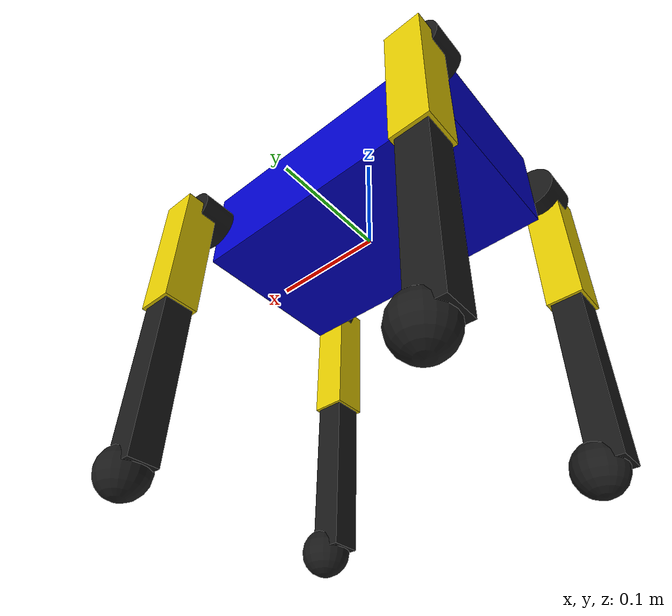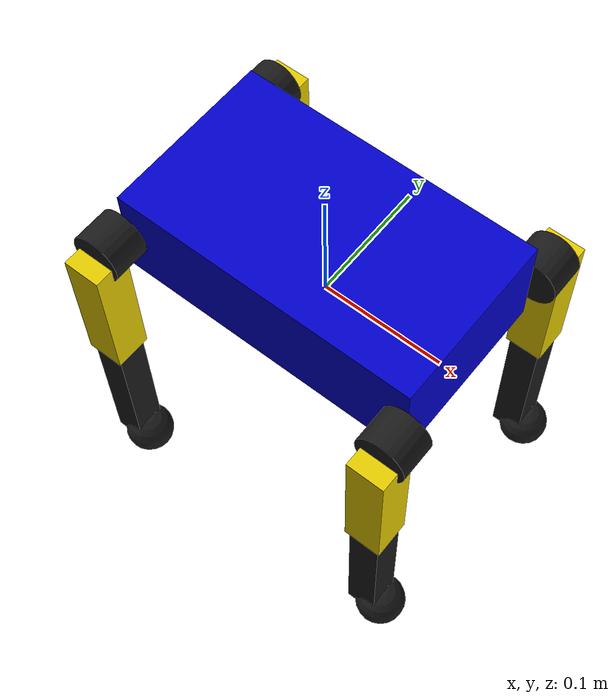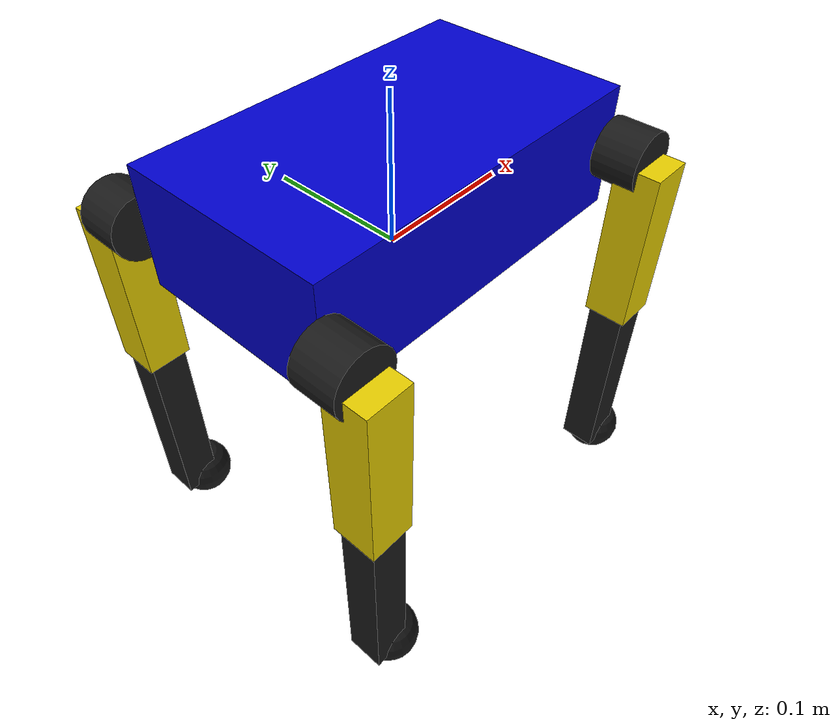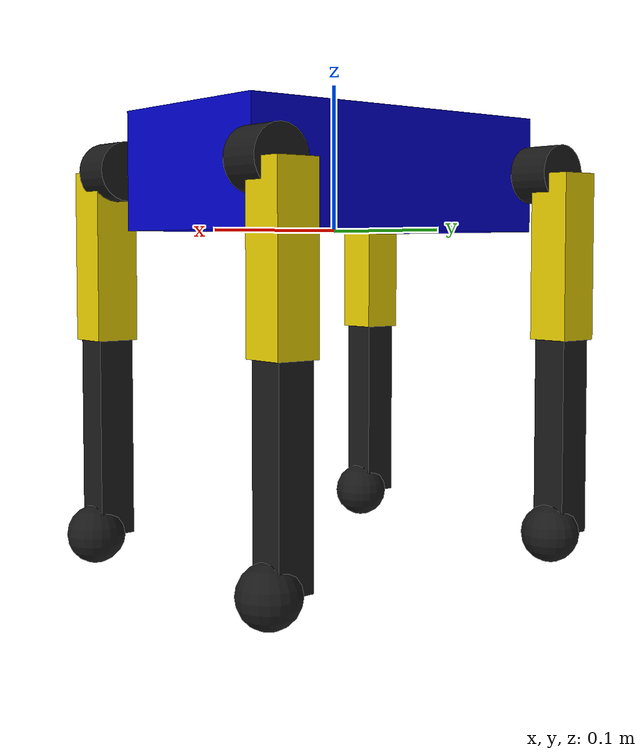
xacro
<?xml version="1.0"?>
<robot xmlns:xacro="http://www.ros.org/wiki/xacro" name="quadruped">
  <material name="blue"><color rgba="0 0 0.8 1"/></material>
  <material name="black"><color rgba="0.1 0.1 0.1 1"/></material>
  <material name="yellow"><color rgba="0.9 0.8 0.0 1"/></material>
  <xacro:property name="PI" value="3.1415926535"/>
  <!-- 실제 로봇 치수: L1=0.03m, L2=0.115m, L3=0.135m, 몸통길이=0.245m -->
  <xacro:property name="L1" value="0.03"/>    <!-- 어깨→허벅지 축 오프셋 -->
  <xacro:property name="L2" value="0.115"/>   <!-- 허벅지 길이 -->
  <xacro:property name="L3" value="0.135"/>   <!-- 종아리 길이 -->
  <xacro:property name="BODY_L" value="0.245"/>
  <xacro:property name="BODY_W" value="0.14"/>
  <xacro:property name="BODY_H" value="0.08"/>
  <xacro:property name="HIP_X"  value="0.1225"/>  <!-- BODY_L/2 -->
  <xacro:property name="HIP_Y"  value="0.07"/>    <!-- BODY_W/2 -->
  <xacro:property name="HIP_Z"  value="${BODY_H/2}"/>
  <link name="base_footprint"/>
  <joint name="base_joint" type="fixed"><parent link="base_footprint"/><child link="base_link"/><origin xyz="0 0 0"/></joint>
  <link name="base_link">
  <visual><origin xyz="0 0 ${BODY_H/2}"/><geometry><box size="${BODY_L} ${BODY_W} ${BODY_H}"/></geometry><material name="blue"/></visual>
  <collision><origin xyz="0 0 ${BODY_H/2}"/><geometry><box size="${BODY_L} ${BODY_W} ${BODY_H}"/></geometry></collision>
  <inertial>
    <origin xyz="0 0 ${BODY_H/2}"/>
    <mass value="2.5"/>
    <inertia ixx="0.0082" iyy="0.0155" izz="0.0212" ixy="0" ixz="0" iyz="0"/>
  </inertial>
</link>
  <xacro:macro name="simple_leg" params="pos x y reflect">
    <joint name="${pos}_shoulder_joint" type="revolute"><parent link="base_link"/><child link="${pos}_shoulder_link"/><axis xyz="1 0 0"/><origin xyz="${x} ${y} ${HIP_Z}"/><limit effort="300.0" lower="-1.57" upper="1.57" velocity="3.0"/><dynamics damping="0.05" friction="0.02"/></joint>
    <link name="${pos}_shoulder_link"><visual><origin rpy="${PI/2} 0 0" xyz="0 ${reflect*L1/2} 0"/><geometry><cylinder radius="0.02" length="${L1}"/></geometry><material name="black"/></visual><inertial><mass value="0.15"/><inertia ixx="0.0001" iyy="0.0001" izz="0.0001" ixy="0" ixz="0" iyz="0"/></inertial></link>
    <joint name="${pos}_leg_joint" type="revolute"><parent link="${pos}_shoulder_link"/><child link="${pos}_leg_link"/><axis xyz="0 1 0"/><origin xyz="0 ${reflect*L1} 0"/><limit effort="300.0" lower="-2.6" upper="2.6" velocity="3.0"/><dynamics damping="0.05" friction="0.02"/></joint>
    <link name="${pos}_leg_link"><visual><origin xyz="0 0 ${-L2/2}"/><geometry><box size="0.03 0.03 ${L2}"/></geometry><material name="yellow"/></visual><collision><origin xyz="0 0 ${-L2/2}"/><geometry><box size="0.03 0.03 ${L2}"/></geometry></collision><inertial><origin xyz="0 0 ${-L2/2}"/><mass value="0.25"/><inertia ixx="0.00030" iyy="0.00030" izz="0.00006" ixy="0" ixz="0" iyz="0"/></inertial></link>
    <joint name="${pos}_foot_joint" type="revolute"><parent link="${pos}_leg_link"/><child link="${pos}_foot_link"/><axis xyz="0 1 0"/><origin xyz="0 0 ${-L2}"/><limit effort="300.0" lower="-2.6" upper="2.6" velocity="3.0"/><dynamics damping="0.05" friction="0.02"/></joint>
    <link name="${pos}_foot_link"><visual><origin xyz="0 0 ${-L3/2}"/><geometry><box size="0.025 0.025 ${L3}"/></geometry><material name="black"/></visual><collision><origin xyz="0 0 ${-L3/2}"/><geometry><box size="0.025 0.025 ${L3}"/></geometry></collision><inertial><origin xyz="0 0 ${-L3/2}"/><mass value="0.15"/><inertia ixx="0.00023" iyy="0.00023" izz="0.00004" ixy="0" ixz="0" iyz="0"/></inertial></link>
    <link name="${pos}_toe_link"><visual><geometry><sphere radius="0.02"/></geometry><material name="black"/></visual><collision><geometry><sphere radius="0.02"/></geometry></collision><inertial><mass value="0.05"/><inertia ixx="0.000008" iyy="0.000008" izz="0.000008" ixy="0" ixz="0" iyz="0"/></inertial></link>
    <joint name="${pos}_toe_joint" type="fixed"><parent link="${pos}_foot_link"/><child link="${pos}_toe_link"/><origin xyz="0.01 0 ${-L3}"/></joint>
    <gazebo reference="${pos}_toe_link"><kp>1000000</kp>
<kd>100</kd>
<maxVel>1.0</maxVel>
<minDepth>0.002</minDepth>
<mu1>2.0</mu1>
<mu2>2.0</mu2></gazebo>
  </xacro:macro>
  <xacro:simple_leg pos="front_left"  x="${HIP_X}"  y="${HIP_Y}"  reflect="1"/>
  <xacro:simple_leg pos="front_right" x="${HIP_X}"  y="${-HIP_Y}" reflect="-1"/>
  <xacro:simple_leg pos="rear_left"   x="${-HIP_X}" y="${HIP_Y}"  reflect="1"/>
  <xacro:simple_leg pos="rear_right"  x="${-HIP_X}" y="${-HIP_Y}" reflect="-1"/>
  <ros2_control name="GazeboSystem" type="system"><hardware><plugin>gazebo_ros2_control/GazeboSystem</plugin></hardware>
    <xacro:macro name="ji" params="name">
    <joint name="${name}">
      <command_interface name="effort"/>
      <state_interface name="position"/>
      <state_interface name="velocity"/>
    </joint>
  </xacro:macro>
    <xacro:ji name="front_left_shoulder_joint"/><xacro:ji name="front_left_leg_joint"/><xacro:ji name="front_left_foot_joint"/>
    <xacro:ji name="front_right_shoulder_joint"/><xacro:ji name="front_right_leg_joint"/><xacro:ji name="front_right_foot_joint"/>
    <xacro:ji name="rear_left_shoulder_joint"/><xacro:ji name="rear_left_leg_joint"/><xacro:ji name="rear_left_foot_joint"/>
    <xacro:ji name="rear_right_shoulder_joint"/><xacro:ji name="rear_right_leg_joint"/><xacro:ji name="rear_right_foot_joint"/>
  </ros2_control>
  <gazebo><plugin name="gazebo_ros2_control" filename="libgazebo_ros2_control.so"><parameters>$(find quadruped_control)/config/controllers.yaml</parameters></plugin></gazebo>
</robot>
